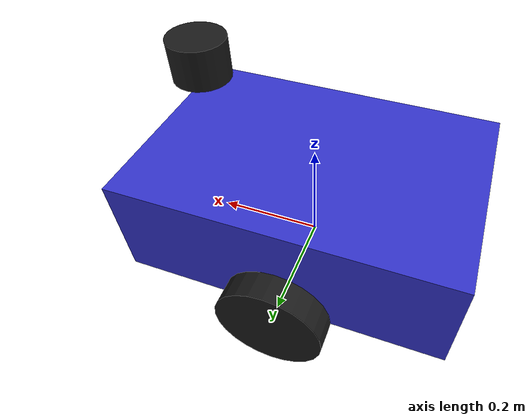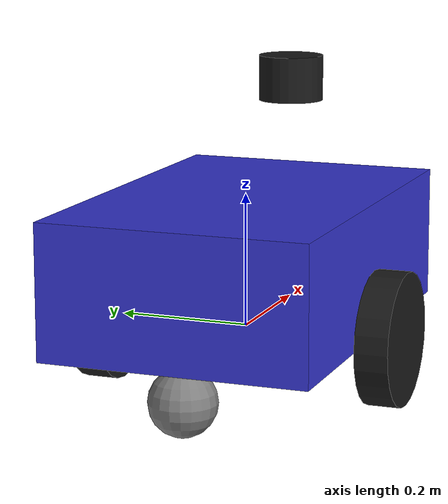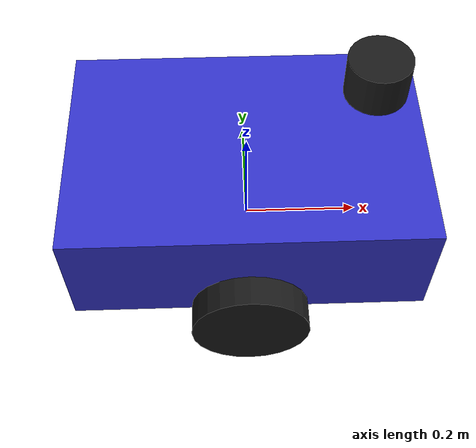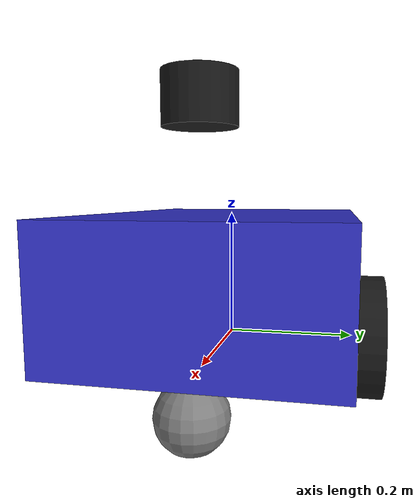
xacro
<?xml version="1.0"?>
<robot xmlns:xacro="http://www.ros.org/wiki/xacro" name="rover">

  <!-- Properties -->
  <xacro:property name="show_lidar" value="false"/>
  <xacro:property name="base_width" value="0.4"/>
  <xacro:property name="base_length" value="0.6"/>
  <xacro:property name="base_height" value="0.2"/>
  <xacro:property name="wheel_radius" value="0.1"/>
  <xacro:property name="wheel_width" value="0.05"/>
  <xacro:property name="wheel_separation" value="0.45"/>

  <!-- Base Link -->
  <link name="base_link">
    <visual>
      <geometry>
        <box size="${base_length} ${base_width} ${base_height}"/>
      </geometry>
      <material name="blue">
        <color rgba="0.2 0.2 0.8 1.0"/>
      </material>
    </visual>
    <collision>
      <geometry>
        <box size="${base_length} ${base_width} ${base_height}"/>
      </geometry>
    </collision>
    <inertial>
      <mass value="10.0"/>
      <inertia ixx="0.133" ixy="0.0" ixz="0.0" iyy="0.333" iyz="0.0" izz="0.433"/>
    </inertial>
  </link>
  <!-- Footprint link for navigation -->
  <link name="base_footprint"/>

  <joint name="base_footprint_joint" type="fixed">
    <parent link="base_footprint"/>
    <child link="base_link"/>
    <origin xyz="0 0 ${wheel_radius}" rpy="0 0 0"/>
  </joint>
  <!-- Wheel Macro -->
  <xacro:macro name="wheel" params="prefix reflect">
    <link name="${prefix}_wheel">
      <visual>
        <geometry>
          <cylinder radius="${wheel_radius}" length="${wheel_width}"/>
        </geometry>
        <origin xyz="0 0 0" rpy="${pi/2} 0 0"/>
        <material name="black">
          <color rgba="0.1 0.1 0.1 1.0"/>
        </material>
      </visual>
      <collision>
        <geometry>
          <cylinder radius="${wheel_radius}" length="${wheel_width}"/>
        </geometry>
        <origin xyz="0 0 0" rpy="${pi/2} 0 0"/>
      </collision>
      <inertial>
        <mass value="1.0"/>
        <inertia ixx="0.00208" ixy="0.0" ixz="0.0" iyy="0.00208" iyz="0.0" izz="0.00375"/>
      </inertial>
    </link>
    <joint name="${prefix}_wheel_joint" type="continuous">
      <parent link="base_link"/>
      <child link="${prefix}_wheel"/>
      <origin xyz="0 ${reflect * wheel_separation/2} ${-base_height/2}" rpy="0 0 0"/>
      <axis xyz="0 1 0"/>
    </joint>
  </xacro:macro>
  <!-- Create wheels -->
  <xacro:wheel prefix="left" reflect="1"/>
  <xacro:wheel prefix="right" reflect="-1"/>
  <!-- Caster wheel front -->
  <link name="caster_front">
    <visual>
      <geometry>
        <sphere radius="${wheel_radius/2}"/>
      </geometry>
      <material name="gray">
        <color rgba="0.5 0.5 0.5 1.0"/>
      </material>
    </visual>
    <collision>
      <geometry>
        <sphere radius="${wheel_radius/2}"/>
      </geometry>
      <surface>
        <friction>
          <ode>
            <mu>0</mu>
            <mu2>0</mu2>
          </ode>
        </friction>
      </surface>
    </collision>
    <inertial>
      <mass value="0.1"/>
      <inertia ixx="0.0001" ixy="0.0" ixz="0.0" iyy="0.0001" iyz="0.0" izz="0.0001"/>
    </inertial>
  </link>
  <joint name="caster_front_joint" type="fixed">
    <parent link="base_link"/>
    <child link="caster_front"/>
    <origin xyz="${base_length/2 - wheel_radius/2} 0 ${-base_height/2 - wheel_radius/2}" rpy="0 0 0"/>
  </joint>
  <!-- Caster wheel back -->
  <link name="caster_back">
    <visual>
      <geometry>
        <sphere radius="${wheel_radius/2}"/>
      </geometry>
      <material name="gray">
        <color rgba="0.5 0.5 0.5 1.0"/>
      </material>
    </visual>
    <collision>
      <geometry>
        <sphere radius="${wheel_radius/2}"/>
      </geometry>
      <surface>
        <friction>
          <ode>
            <mu>0</mu>
            <mu2>0</mu2>
          </ode>
        </friction>
      </surface>
    </collision>
    <inertial>
      <mass value="0.1"/>
      <inertia ixx="0.0001" ixy="0.0" ixz="0.0" iyy="0.0001" iyz="0.0" izz="0.0001"/>
    </inertial>
  </link>
  <joint name="caster_back_joint" type="fixed">
    <parent link="base_link"/>
    <child link="caster_back"/>
    <origin xyz="${-base_length/2 + wheel_radius/2} 0 ${-base_height/2 - wheel_radius/2}" rpy="0 0 0"/>
  </joint>
  <!-- 3D LiDAR Sensor (Velodyne-style) -->
  <link name="lidar_link">
    <visual>
      <geometry>
        <cylinder radius="0.05" length="0.07"/>
      </geometry>
      <material name="black">
        <color rgba="0.1 0.1 0.1 1.0"/>
      </material>
    </visual>
    <collision>
      <geometry>
        <cylinder radius="0.05" length="0.07"/>
      </geometry>
    </collision>
    <inertial>
      <mass value="0.2"/>
      <inertia ixx="0.0001" ixy="0.0" ixz="0.0" iyy="0.0001" iyz="0.0" izz="0.0001"/>
    </inertial>
  </link>
  <joint name="lidar_joint" type="fixed">
    <parent link="base_link"/>
    <child link="lidar_link"/>
    <origin xyz="0.2 0 ${base_height/2 + 0.15}" rpy="0 0 0"/>
  </joint>
  <!-- ✅ FIXED: ZED camera frame now attached to base_link (rotates with robot) -->
  <link name="zed_left_camera_frame"/>
  <joint name="zed_camera_joint" type="fixed">
    <parent link="base_link"/>
    <child link="zed_left_camera_frame"/>
    <origin xyz="0.2 0 ${base_height/2 + 0.15}" rpy="0 0 0"/>
  </joint>
  <!-- Gazebo 3D LiDAR Plugin (GPU accelerated) -->
  <gazebo reference="lidar_link">
    <sensor type="gpu_ray" name="velodyne_sensor">
      <pose>0 0 0 0 0 0</pose>
      <visualize>${show_lidar}</visualize>
      <update_rate>10</update_rate>
      <ray>
        <scan>
          <horizontal>
            <samples>360</samples>
            <resolution>1</resolution>
            <min_angle>-${11*pi/36}</min_angle>
            <max_angle>${11*pi/36}</max_angle>
          </horizontal>
          <vertical>
            <samples>16</samples>
            <resolution>1</resolution>
            <min_angle>-0.6</min_angle>
            <max_angle>0.3</max_angle>
          </vertical>
        </scan>
        <range>
          <min>0.3</min>
          <max>50.0</max>
          <max>50.0</max>
          <resolution>0.01</resolution>
        </range>
        <noise>
          <type>gaussian</type>
          <mean>0.0</mean>
          <stddev>0.01</stddev>
        </noise>
      </ray>
      <plugin name="gazebo_ros_velodyne" filename="libgazebo_ros_velodyne_laser.so">
        <topicName>velodyne_points</topicName>
        <frameName>lidar_link</frameName>
        <organize_cloud>false</organize_cloud>
        <min_range>0.3</min_range>
        <max_range>50.0</max_range>
      </plugin>
    </sensor>
  </gazebo>
  <!-- Differential Drive Plugin -->
  <gazebo>
    <plugin name="differential_drive_controller" filename="libgazebo_ros_diff_drive.so">
      <update_rate>50</update_rate>
      <left_joint>left_wheel_joint</left_joint>
      <right_joint>right_wheel_joint</right_joint>
      <wheel_separation>${wheel_separation}</wheel_separation>
      <wheel_diameter>${2*wheel_radius}</wheel_diameter>
      <max_wheel_torque>20</max_wheel_torque>
      <max_wheel_acceleration>1.0</max_wheel_acceleration>
      <command_topic>cmd_vel</command_topic>
      <publish_odom>true</publish_odom>
      <publish_odom_tf>true</publish_odom_tf>
      <publish_wheel_tf>false</publish_wheel_tf>
      <odometry_topic>odom</odometry_topic>
      <odometry_frame>odom</odometry_frame>
      <robot_base_frame>base_footprint</robot_base_frame>
    </plugin>
  </gazebo>
  <!-- Gazebo material colors -->
  <gazebo reference="base_link">
    <material>Gazebo/Blue</material>
  </gazebo>

  <!-- Drive wheels with good traction -->
  <gazebo reference="left_wheel">
    <mu1>1.0</mu1>
    <mu2>1.0</mu2>
    <kp>1000000.0</kp>
    <kd>100.0</kd>
    <minDepth>0.001</minDepth>
    <material>Gazebo/Black</material>
  </gazebo>

  <gazebo reference="right_wheel">
    <mu1>1.0</mu1>
    <mu2>1.0</mu2>
    <kp>1000000.0</kp>
    <kd>100.0</kd>
    <minDepth>0.001</minDepth>
    <material>Gazebo/Black</material>
  </gazebo>

  <gazebo reference="lidar_link">
    <material>Gazebo/Black</material>
  </gazebo>

  <!-- Frictionless casters -->
  <gazebo reference="caster_front">
    <mu1>0.0</mu1>
    <mu2>0.0</mu2>
    <kp>1000000.0</kp>
    <kd>100.0</kd>
    <material>Gazebo/Grey</material>
  </gazebo>

  <gazebo reference="caster_back">
    <mu1>0.0</mu1>
    <mu2>0.0</mu2>
    <kp>1000000.0</kp>
    <kd>100.0</kd>
    <material>Gazebo/Grey</material>
  </gazebo>
</robot>
